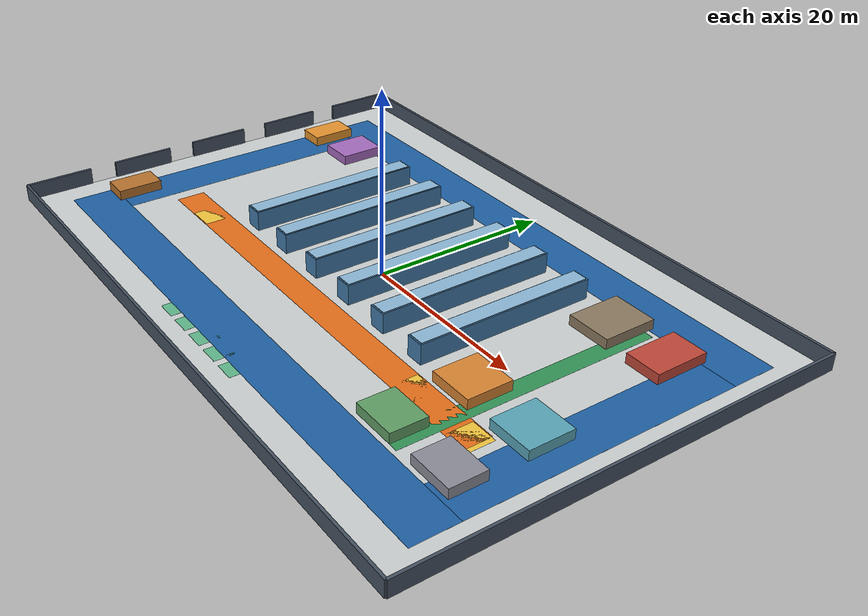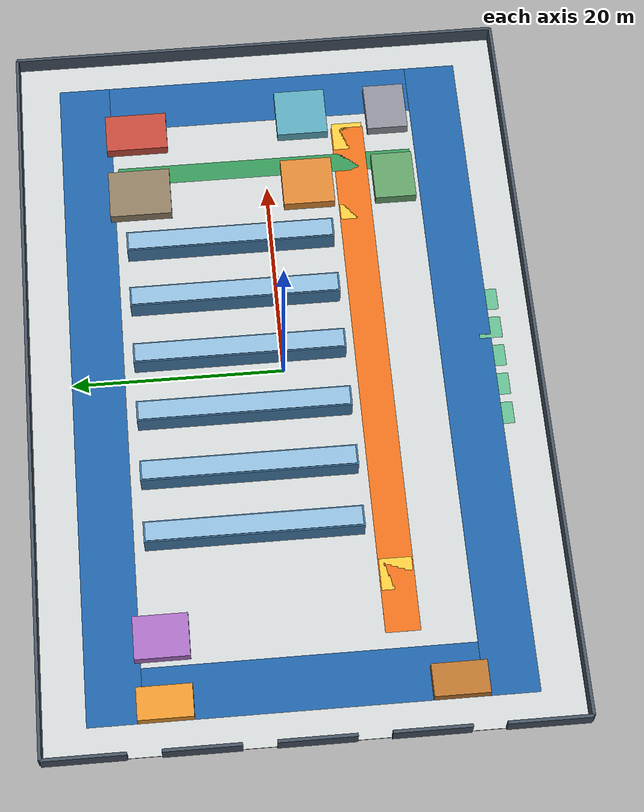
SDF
<?xml version='1.0' encoding='utf-8'?>
<sdf version="1.6">
  <world name="automotive_warehouse">
    <gravity>0 0 -9.8</gravity>
    <physics name="default_physics" type="ode">
      <max_step_size>0.001</max_step_size>
      <real_time_factor>1</real_time_factor>
      <real_time_update_rate>1000</real_time_update_rate>
    </physics>
    <plugin name="gazebo_ros_state" filename="libgazebo_ros_state.so">
      <ros>
        <namespace>/gazebo</namespace>
      </ros>
      <update_rate>30</update_rate>
    </plugin>
    <scene>
      <ambient>.72 .72 .72 1</ambient>
      <background>.88 .91 .94 1</background>
      <shadows>false</shadows>
    </scene>
    <light name="sun" type="directional">
      <pose>0 0 30 0 0 0</pose>
      <diffuse>.85 .85 .85 1</diffuse>
      <direction>-.3 .2 -1</direction>
      <cast_shadows>false</cast_shadows>
    </light>
    <model name="floor">
      <static>true</static>
      <pose>0 0 -0.1 0 0 0</pose>
      <link name="body">
        <collision name="collision">
          <pose>0 0 0.05 0 0 0</pose>
          <geometry>
            <box>
              <size>72 48 0.1</size>
            </box>
          </geometry>
        </collision>
        <visual name="visual">
          <pose>0 0 0.05 0 0 0</pose>
          <geometry>
            <box>
              <size>72 48 0.1</size>
            </box>
          </geometry>
          <material>
            <ambient>0.8 0.82 0.82 1</ambient>
            <diffuse>0.8 0.82 0.82 1</diffuse>
          </material>
          <cast_shadows>false</cast_shadows>
        </visual>
      </link>
    </model>
    <model name="wall_north">
      <static>true</static>
      <pose>0 24 0.0 0 0 0</pose>
      <link name="body">
        <collision name="collision">
          <pose>0 0 0.9 0 0 0</pose>
          <geometry>
            <box>
              <size>72 0.3 1.8</size>
            </box>
          </geometry>
        </collision>
        <visual name="visual">
          <pose>0 0 0.9 0 0 0</pose>
          <geometry>
            <box>
              <size>72 0.3 1.8</size>
            </box>
          </geometry>
          <material>
            <ambient>0.27 0.32 0.38 1</ambient>
            <diffuse>0.27 0.32 0.38 1</diffuse>
          </material>
          <cast_shadows>false</cast_shadows>
        </visual>
      </link>
    </model>
    <model name="wall_south">
      <static>true</static>
      <pose>0 -24 0.0 0 0 0</pose>
      <link name="body">
        <collision name="collision">
          <pose>0 0 0.9 0 0 0</pose>
          <geometry>
            <box>
              <size>72 0.3 1.8</size>
            </box>
          </geometry>
        </collision>
        <visual name="visual">
          <pose>0 0 0.9 0 0 0</pose>
          <geometry>
            <box>
              <size>72 0.3 1.8</size>
            </box>
          </geometry>
          <material>
            <ambient>0.27 0.32 0.38 1</ambient>
            <diffuse>0.27 0.32 0.38 1</diffuse>
          </material>
          <cast_shadows>false</cast_shadows>
        </visual>
      </link>
    </model>
    <model name="wall_east">
      <static>true</static>
      <pose>36 0 0.0 0 0 0</pose>
      <link name="body">
        <collision name="collision">
          <pose>0 0 0.9 0 0 0</pose>
          <geometry>
            <box>
              <size>0.3 48 1.8</size>
            </box>
          </geometry>
        </collision>
        <visual name="visual">
          <pose>0 0 0.9 0 0 0</pose>
          <geometry>
            <box>
              <size>0.3 48 1.8</size>
            </box>
          </geometry>
          <material>
            <ambient>0.27 0.32 0.38 1</ambient>
            <diffuse>0.27 0.32 0.38 1</diffuse>
          </material>
          <cast_shadows>false</cast_shadows>
        </visual>
      </link>
    </model>
    <model name="wall_west_0">
      <static>true</static>
      <pose>-36 20.25 0.0 0 0 0</pose>
      <link name="body">
        <collision name="collision">
          <pose>0 0 0.9 0 0 0</pose>
          <geometry>
            <box>
              <size>0.3 7.5 1.8</size>
            </box>
          </geometry>
        </collision>
        <visual name="visual">
          <pose>0 0 0.9 0 0 0</pose>
          <geometry>
            <box>
              <size>0.3 7.5 1.8</size>
            </box>
          </geometry>
          <material>
            <ambient>0.27 0.32 0.38 1</ambient>
            <diffuse>0.27 0.32 0.38 1</diffuse>
          </material>
          <cast_shadows>false</cast_shadows>
        </visual>
      </link>
    </model>
    <model name="wall_west_1">
      <static>true</static>
      <pose>-36 10.0 0.0 0 0 0</pose>
      <link name="body">
        <collision name="collision">
          <pose>0 0 0.9 0 0 0</pose>
          <geometry>
            <box>
              <size>0.3 7.0 1.8</size>
            </box>
          </geometry>
        </collision>
        <visual name="visual">
          <pose>0 0 0.9 0 0 0</pose>
          <geometry>
            <box>
              <size>0.3 7.0 1.8</size>
            </box>
          </geometry>
          <material>
            <ambient>0.27 0.32 0.38 1</ambient>
            <diffuse>0.27 0.32 0.38 1</diffuse>
          </material>
          <cast_shadows>false</cast_shadows>
        </visual>
      </link>
    </model>
    <model name="wall_west_2">
      <static>true</static>
      <pose>-36 0.0 0.0 0 0 0</pose>
      <link name="body">
        <collision name="collision">
          <pose>0 0 0.9 0 0 0</pose>
          <geometry>
            <box>
              <size>0.3 7.0 1.8</size>
            </box>
          </geometry>
        </collision>
        <visual name="visual">
          <pose>0 0 0.9 0 0 0</pose>
          <geometry>
            <box>
              <size>0.3 7.0 1.8</size>
            </box>
          </geometry>
          <material>
            <ambient>0.27 0.32 0.38 1</ambient>
            <diffuse>0.27 0.32 0.38 1</diffuse>
          </material>
          <cast_shadows>false</cast_shadows>
        </visual>
      </link>
    </model>
    <model name="wall_west_3">
      <static>true</static>
      <pose>-36 -10.0 0.0 0 0 0</pose>
      <link name="body">
        <collision name="collision">
          <pose>0 0 0.9 0 0 0</pose>
          <geometry>
            <box>
              <size>0.3 7.0 1.8</size>
            </box>
          </geometry>
        </collision>
        <visual name="visual">
          <pose>0 0 0.9 0 0 0</pose>
          <geometry>
            <box>
              <size>0.3 7.0 1.8</size>
            </box>
          </geometry>
          <material>
            <ambient>0.27 0.32 0.38 1</ambient>
            <diffuse>0.27 0.32 0.38 1</diffuse>
          </material>
          <cast_shadows>false</cast_shadows>
        </visual>
      </link>
    </model>
    <model name="wall_west_4">
      <static>true</static>
      <pose>-36 -20.25 0.0 0 0 0</pose>
      <link name="body">
        <collision name="collision">
          <pose>0 0 0.9 0 0 0</pose>
          <geometry>
            <box>
              <size>0.3 7.5 1.8</size>
            </box>
          </geometry>
        </collision>
        <visual name="visual">
          <pose>0 0 0.9 0 0 0</pose>
          <geometry>
            <box>
              <size>0.3 7.5 1.8</size>
            </box>
          </geometry>
          <material>
            <ambient>0.27 0.32 0.38 1</ambient>
            <diffuse>0.27 0.32 0.38 1</diffuse>
          </material>
          <cast_shadows>false</cast_shadows>
        </visual>
      </link>
    </model>
    <model name="heavy_lane_south">
      <static>true</static>
      <pose>0 -17.5 0.002 0 0 0</pose>
      <link name="body">
        <visual name="visual">
          <pose>0 0 0.002 0 0 0</pose>
          <geometry>
            <box>
              <size>66 5.0 0.004</size>
            </box>
          </geometry>
          <material>
            <ambient>0.12 0.38 0.64 1</ambient>
            <diffuse>0.12 0.38 0.64 1</diffuse>
          </material>
          <cast_shadows>false</cast_shadows>
        </visual>
      </link>
    </model>
    <model name="heavy_lane_north">
      <static>true</static>
      <pose>0 17.5 0.002 0 0 0</pose>
      <link name="body">
        <visual name="visual">
          <pose>0 0 0.002 0 0 0</pose>
          <geometry>
            <box>
              <size>66 5.0 0.004</size>
            </box>
          </geometry>
          <material>
            <ambient>0.12 0.38 0.64 1</ambient>
            <diffuse>0.12 0.38 0.64 1</diffuse>
          </material>
          <cast_shadows>false</cast_shadows>
        </visual>
      </link>
    </model>
    <model name="heavy_lane_west">
      <static>true</static>
      <pose>-30.5 0 0.002 0 0 0</pose>
      <link name="body">
        <visual name="visual">
          <pose>0 0 0.002 0 0 0</pose>
          <geometry>
            <box>
              <size>5.0 30 0.004</size>
            </box>
          </geometry>
          <material>
            <ambient>0.12 0.38 0.64 1</ambient>
            <diffuse>0.12 0.38 0.64 1</diffuse>
          </material>
          <cast_shadows>false</cast_shadows>
        </visual>
      </link>
    </model>
    <model name="heavy_lane_east">
      <static>true</static>
      <pose>30.5 0 0.002 0 0 0</pose>
      <link name="body">
        <visual name="visual">
          <pose>0 0 0.002 0 0 0</pose>
          <geometry>
            <box>
              <size>5.0 30 0.004</size>
            </box>
          </geometry>
          <material>
            <ambient>0.12 0.38 0.64 1</ambient>
            <diffuse>0.12 0.38 0.64 1</diffuse>
          </material>
          <cast_shadows>false</cast_shadows>
        </visual>
      </link>
    </model>
    <model name="light_lane_middle">
      <static>true</static>
      <pose>0 -8.5 0.002 0 0 0</pose>
      <link name="body">
        <visual name="visual">
          <pose>0 0 0.002 0 0 0</pose>
          <geometry>
            <box>
              <size>53 3.2 0.004</size>
            </box>
          </geometry>
          <material>
            <ambient>0.9 0.43 0.1 1</ambient>
            <diffuse>0.9 0.43 0.1 1</diffuse>
          </material>
          <cast_shadows>false</cast_shadows>
        </visual>
      </link>
    </model>
    <model name="pedestrian_lane">
      <static>true</static>
      <pose>22.5 0 0.002 0 0 0</pose>
      <link name="body">
        <visual name="visual">
          <pose>0 0 0.002 0 0 0</pose>
          <geometry>
            <box>
              <size>2.0 29 0.004</size>
            </box>
          </geometry>
          <material>
            <ambient>0.2 0.58 0.34 1</ambient>
            <diffuse>0.2 0.58 0.34 1</diffuse>
          </material>
          <cast_shadows>false</cast_shadows>
        </visual>
      </link>
    </model>
    <model name="pallet_rack_1">
      <static>true</static>
      <pose>-16 4.0 0.0 0 0 0</pose>
      <link name="body">
        <collision name="collision">
          <pose>0 0 1.1 0 0 0</pose>
          <geometry>
            <box>
              <size>2.0 20.0 2.2</size>
            </box>
          </geometry>
        </collision>
        <visual name="visual">
          <pose>0 0 1.1 0 0 0</pose>
          <geometry>
            <box>
              <size>2.0 20.0 2.2</size>
            </box>
          </geometry>
          <material>
            <ambient>0.26 0.48 0.66 1</ambient>
            <diffuse>0.26 0.48 0.66 1</diffuse>
          </material>
          <cast_shadows>false</cast_shadows>
        </visual>
      </link>
    </model>
    <model name="rack_cap_1">
      <static>true</static>
      <pose>-16 4.0 2.2 0 0 0</pose>
      <link name="body">
        <visual name="visual">
          <pose>0 0 0.04 0 0 0</pose>
          <geometry>
            <box>
              <size>1.75 19.7 0.08</size>
            </box>
          </geometry>
          <material>
            <ambient>0.55 0.72 0.84 1</ambient>
            <diffuse>0.55 0.72 0.84 1</diffuse>
          </material>
          <cast_shadows>false</cast_shadows>
        </visual>
      </link>
    </model>
    <model name="pallet_rack_2">
      <static>true</static>
      <pose>-10 4.0 0.0 0 0 0</pose>
      <link name="body">
        <collision name="collision">
          <pose>0 0 1.1 0 0 0</pose>
          <geometry>
            <box>
              <size>2.0 20.0 2.2</size>
            </box>
          </geometry>
        </collision>
        <visual name="visual">
          <pose>0 0 1.1 0 0 0</pose>
          <geometry>
            <box>
              <size>2.0 20.0 2.2</size>
            </box>
          </geometry>
          <material>
            <ambient>0.26 0.48 0.66 1</ambient>
            <diffuse>0.26 0.48 0.66 1</diffuse>
          </material>
          <cast_shadows>false</cast_shadows>
        </visual>
      </link>
    </model>
    <model name="rack_cap_2">
      <static>true</static>
      <pose>-10 4.0 2.2 0 0 0</pose>
      <link name="body">
        <visual name="visual">
          <pose>0 0 0.04 0 0 0</pose>
          <geometry>
            <box>
              <size>1.75 19.7 0.08</size>
            </box>
          </geometry>
          <material>
            <ambient>0.55 0.72 0.84 1</ambient>
            <diffuse>0.55 0.72 0.84 1</diffuse>
          </material>
          <cast_shadows>false</cast_shadows>
        </visual>
      </link>
    </model>
    <model name="pallet_rack_3">
      <static>true</static>
      <pose>-4 4.0 0.0 0 0 0</pose>
      <link name="body">
        <collision name="collision">
          <pose>0 0 1.1 0 0 0</pose>
          <geometry>
            <box>
              <size>2.0 20.0 2.2</size>
            </box>
          </geometry>
        </collision>
        <visual name="visual">
          <pose>0 0 1.1 0 0 0</pose>
          <geometry>
            <box>
              <size>2.0 20.0 2.2</size>
            </box>
          </geometry>
          <material>
            <ambient>0.26 0.48 0.66 1</ambient>
            <diffuse>0.26 0.48 0.66 1</diffuse>
          </material>
          <cast_shadows>false</cast_shadows>
        </visual>
      </link>
    </model>
    <model name="rack_cap_3">
      <static>true</static>
      <pose>-4 4.0 2.2 0 0 0</pose>
      <link name="body">
        <visual name="visual">
          <pose>0 0 0.04 0 0 0</pose>
          <geometry>
            <box>
              <size>1.75 19.7 0.08</size>
            </box>
          </geometry>
          <material>
            <ambient>0.55 0.72 0.84 1</ambient>
            <diffuse>0.55 0.72 0.84 1</diffuse>
          </material>
          <cast_shadows>false</cast_shadows>
        </visual>
      </link>
    </model>
    <model name="pallet_rack_4">
      <static>true</static>
      <pose>2 4.0 0.0 0 0 0</pose>
      <link name="body">
        <collision name="collision">
          <pose>0 0 1.1 0 0 0</pose>
          <geometry>
            <box>
              <size>2.0 20.0 2.2</size>
            </box>
          </geometry>
        </collision>
        <visual name="visual">
          <pose>0 0 1.1 0 0 0</pose>
          <geometry>
            <box>
              <size>2.0 20.0 2.2</size>
            </box>
          </geometry>
          <material>
            <ambient>0.26 0.48 0.66 1</ambient>
            <diffuse>0.26 0.48 0.66 1</diffuse>
          </material>
          <cast_shadows>false</cast_shadows>
        </visual>
      </link>
    </model>
    <model name="rack_cap_4">
      <static>true</static>
      <pose>2 4.0 2.2 0 0 0</pose>
      <link name="body">
        <visual name="visual">
          <pose>0 0 0.04 0 0 0</pose>
          <geometry>
            <box>
              <size>1.75 19.7 0.08</size>
            </box>
          </geometry>
          <material>
            <ambient>0.55 0.72 0.84 1</ambient>
            <diffuse>0.55 0.72 0.84 1</diffuse>
          </material>
          <cast_shadows>false</cast_shadows>
        </visual>
      </link>
    </model>
    <model name="pallet_rack_5">
      <static>true</static>
      <pose>8 4.0 0.0 0 0 0</pose>
      <link name="body">
        <collision name="collision">
          <pose>0 0 1.1 0 0 0</pose>
          <geometry>
            <box>
              <size>2.0 20.0 2.2</size>
            </box>
          </geometry>
        </collision>
        <visual name="visual">
          <pose>0 0 1.1 0 0 0</pose>
          <geometry>
            <box>
              <size>2.0 20.0 2.2</size>
            </box>
          </geometry>
          <material>
            <ambient>0.26 0.48 0.66 1</ambient>
            <diffuse>0.26 0.48 0.66 1</diffuse>
          </material>
          <cast_shadows>false</cast_shadows>
        </visual>
      </link>
    </model>
    <model name="rack_cap_5">
      <static>true</static>
      <pose>8 4.0 2.2 0 0 0</pose>
      <link name="body">
        <visual name="visual">
          <pose>0 0 0.04 0 0 0</pose>
          <geometry>
            <box>
              <size>1.75 19.7 0.08</size>
            </box>
          </geometry>
          <material>
            <ambient>0.55 0.72 0.84 1</ambient>
            <diffuse>0.55 0.72 0.84 1</diffuse>
          </material>
          <cast_shadows>false</cast_shadows>
        </visual>
      </link>
    </model>
    <model name="pallet_rack_6">
      <static>true</static>
      <pose>14 4.0 0.0 0 0 0</pose>
      <link name="body">
        <collision name="collision">
          <pose>0 0 1.1 0 0 0</pose>
          <geometry>
            <box>
              <size>2.0 20.0 2.2</size>
            </box>
          </geometry>
        </collision>
        <visual name="visual">
          <pose>0 0 1.1 0 0 0</pose>
          <geometry>
            <box>
              <size>2.0 20.0 2.2</size>
            </box>
          </geometry>
          <material>
            <ambient>0.26 0.48 0.66 1</ambient>
            <diffuse>0.26 0.48 0.66 1</diffuse>
          </material>
          <cast_shadows>false</cast_shadows>
        </visual>
      </link>
    </model>
    <model name="rack_cap_6">
      <static>true</static>
      <pose>14 4.0 2.2 0 0 0</pose>
      <link name="body">
        <visual name="visual">
          <pose>0 0 0.04 0 0 0</pose>
          <geometry>
            <box>
              <size>1.75 19.7 0.08</size>
            </box>
          </geometry>
          <material>
            <ambient>0.55 0.72 0.84 1</ambient>
            <diffuse>0.55 0.72 0.84 1</diffuse>
          </material>
          <cast_shadows>false</cast_shadows>
        </visual>
      </link>
    </model>
    <model name="receiving_in">
      <static>true</static>
      <pose>-31.5 13.0 0.0 0 0 0</pose>
      <link name="body">
        <collision name="collision">
          <pose>0 0 0.55 0 0 0</pose>
          <geometry>
            <box>
              <size>3.0 5.0 1.1</size>
            </box>
          </geometry>
        </collision>
        <visual name="visual">
          <pose>0 0 0.55 0 0 0</pose>
          <geometry>
            <box>
              <size>3.0 5.0 1.1</size>
            </box>
          </geometry>
          <material>
            <ambient>0.9 0.58 0.18 1</ambient>
            <diffuse>0.9 0.58 0.18 1</diffuse>
          </material>
          <cast_shadows>false</cast_shadows>
        </visual>
      </link>
    </model>
    <model name="quality_control">
      <static>true</static>
      <pose>-25.5 13.0 0.0 0 0 0</pose>
      <link name="body">
        <collision name="collision">
          <pose>0 0 0.55 0 0 0</pose>
          <geometry>
            <box>
              <size>4.0 5.0 1.1</size>
            </box>
          </geometry>
        </collision>
        <visual name="visual">
          <pose>0 0 0.55 0 0 0</pose>
          <geometry>
            <box>
              <size>4.0 5.0 1.1</size>
            </box>
          </geometry>
          <material>
            <ambient>0.65 0.42 0.75 1</ambient>
            <diffuse>0.65 0.42 0.75 1</diffuse>
          </material>
          <cast_shadows>false</cast_shadows>
        </visual>
      </link>
    </model>
    <model name="oversize_storage">
      <static>true</static>
      <pose>20.0 12.5 0.0 0 0 0</pose>
      <link name="body">
        <collision name="collision">
          <pose>0 0 0.55 0 0 0</pose>
          <geometry>
            <box>
              <size>5.0 6.0 1.1</size>
            </box>
          </geometry>
        </collision>
        <visual name="visual">
          <pose>0 0 0.55 0 0 0</pose>
          <geometry>
            <box>
              <size>5.0 6.0 1.1</size>
            </box>
          </geometry>
          <material>
            <ambient>0.55 0.48 0.38 1</ambient>
            <diffuse>0.55 0.48 0.38 1</diffuse>
          </material>
          <cast_shadows>false</cast_shadows>
        </visual>
      </link>
    </model>
    <model name="hazmat_cell">
      <static>true</static>
      <pose>27.0 12.5 0.0 0 0 0</pose>
      <link name="body">
        <collision name="collision">
          <pose>0 0 0.55 0 0 0</pose>
          <geometry>
            <box>
              <size>4.0 6.0 1.1</size>
            </box>
          </geometry>
        </collision>
        <visual name="visual">
          <pose>0 0 0.55 0 0 0</pose>
          <geometry>
            <box>
              <size>4.0 6.0 1.1</size>
            </box>
          </geometry>
          <material>
            <ambient>0.75 0.28 0.22 1</ambient>
            <diffuse>0.75 0.28 0.22 1</diffuse>
          </material>
          <cast_shadows>false</cast_shadows>
        </visual>
      </link>
    </model>
    <model name="kitting_station">
      <static>true</static>
      <pose>20.0 -4.0 0.0 0 0 0</pose>
      <link name="body">
        <collision name="collision">
          <pose>0 0 0.55 0 0 0</pose>
          <geometry>
            <box>
              <size>5.0 5.0 1.1</size>
            </box>
          </geometry>
        </collision>
        <visual name="visual">
          <pose>0 0 0.55 0 0 0</pose>
          <geometry>
            <box>
              <size>5.0 5.0 1.1</size>
            </box>
          </geometry>
          <material>
            <ambient>0.85 0.52 0.2 1</ambient>
            <diffuse>0.85 0.52 0.2 1</diffuse>
          </material>
          <cast_shadows>false</cast_shadows>
        </visual>
      </link>
    </model>
    <model name="line_buffer">
      <static>true</static>
      <pose>28.0 -4.0 0.0 0 0 0</pose>
      <link name="body">
        <collision name="collision">
          <pose>0 0 0.55 0 0 0</pose>
          <geometry>
            <box>
              <size>5.0 5.0 1.1</size>
            </box>
          </geometry>
        </collision>
        <visual name="visual">
          <pose>0 0 0.55 0 0 0</pose>
          <geometry>
            <box>
              <size>5.0 5.0 1.1</size>
            </box>
          </geometry>
          <material>
            <ambient>0.35 0.65 0.72 1</ambient>
            <diffuse>0.35 0.65 0.72 1</diffuse>
          </material>
          <cast_shadows>false</cast_shadows>
        </visual>
      </link>
    </model>
    <model name="amr_service">
      <static>true</static>
      <pose>20.0 -12.5 0.0 0 0 0</pose>
      <link name="body">
        <collision name="collision">
          <pose>0 0 0.55 0 0 0</pose>
          <geometry>
            <box>
              <size>5.0 4.0 1.1</size>
            </box>
          </geometry>
        </collision>
        <visual name="visual">
          <pose>0 0 0.55 0 0 0</pose>
          <geometry>
            <box>
              <size>5.0 4.0 1.1</size>
            </box>
          </geometry>
          <material>
            <ambient>0.38 0.62 0.4 1</ambient>
            <diffuse>0.38 0.62 0.4 1</diffuse>
          </material>
          <cast_shadows>false</cast_shadows>
        </visual>
      </link>
    </model>
    <model name="empty_container">
      <static>true</static>
      <pose>28.0 -12.5 0.0 0 0 0</pose>
      <link name="body">
        <collision name="collision">
          <pose>0 0 0.55 0 0 0</pose>
          <geometry>
            <box>
              <size>5.0 4.0 1.1</size>
            </box>
          </geometry>
        </collision>
        <visual name="visual">
          <pose>0 0 0.55 0 0 0</pose>
          <geometry>
            <box>
              <size>5.0 4.0 1.1</size>
            </box>
          </geometry>
          <material>
            <ambient>0.55 0.55 0.6 1</ambient>
            <diffuse>0.55 0.55 0.6 1</diffuse>
          </material>
          <cast_shadows>false</cast_shadows>
        </visual>
      </link>
    </model>
    <model name="shipping_out">
      <static>true</static>
      <pose>-31.5 -13.0 0.0 0 0 0</pose>
      <link name="body">
        <collision name="collision">
          <pose>0 0 0.55 0 0 0</pose>
          <geometry>
            <box>
              <size>3.0 5.0 1.1</size>
            </box>
          </geometry>
        </collision>
        <visual name="visual">
          <pose>0 0 0.55 0 0 0</pose>
          <geometry>
            <box>
              <size>3.0 5.0 1.1</size>
            </box>
          </geometry>
          <material>
            <ambient>0.72 0.45 0.18 1</ambient>
            <diffuse>0.72 0.45 0.18 1</diffuse>
          </material>
          <cast_shadows>false</cast_shadows>
        </visual>
      </link>
    </model>
    <model name="handoff_p01">
      <static>true</static>
      <pose>-21 -8.5 0.002 0 0 0</pose>
      <link name="body">
        <visual name="visual">
          <pose>0 0 0.002 0 0 0</pose>
          <geometry>
            <box>
              <size>3 3 0.004</size>
            </box>
          </geometry>
          <material>
            <ambient>0.95 0.78 0.24 1</ambient>
            <diffuse>0.95 0.78 0.24 1</diffuse>
          </material>
          <cast_shadows>false</cast_shadows>
        </visual>
      </link>
    </model>
    <model name="handoff_b01">
      <static>true</static>
      <pose>17.5 -8.5 0.002 0 0 0</pose>
      <link name="body">
        <visual name="visual">
          <pose>0 0 0.002 0 0 0</pose>
          <geometry>
            <box>
              <size>3 3 0.004</size>
            </box>
          </geometry>
          <material>
            <ambient>0.95 0.78 0.24 1</ambient>
            <diffuse>0.95 0.78 0.24 1</diffuse>
          </material>
          <cast_shadows>false</cast_shadows>
        </visual>
      </link>
    </model>
    <model name="handoff_k01">
      <static>true</static>
      <pose>25.5 -8.5 0.002 0 0 0</pose>
      <link name="body">
        <visual name="visual">
          <pose>0 0 0.002 0 0 0</pose>
          <geometry>
            <box>
              <size>3 3 0.004</size>
            </box>
          </geometry>
          <material>
            <ambient>0.95 0.78 0.24 1</ambient>
            <diffuse>0.95 0.78 0.24 1</diffuse>
          </material>
          <cast_shadows>false</cast_shadows>
        </visual>
      </link>
    </model>
    <model name="parking_1">
      <static>true</static>
      <pose>-6 -20.0 0.002 0 0 0</pose>
      <link name="body">
        <visual name="visual">
          <pose>0 0 0.002 0 0 0</pose>
          <geometry>
            <box>
              <size>2.2 2.2 0.004</size>
            </box>
          </geometry>
          <material>
            <ambient>0.38 0.72 0.55 1</ambient>
            <diffuse>0.38 0.72 0.55 1</diffuse>
          </material>
          <cast_shadows>false</cast_shadows>
        </visual>
      </link>
    </model>
    <model name="parking_2">
      <static>true</static>
      <pose>-3 -20.0 0.002 0 0 0</pose>
      <link name="body">
        <visual name="visual">
          <pose>0 0 0.002 0 0 0</pose>
          <geometry>
            <box>
              <size>2.2 2.2 0.004</size>
            </box>
          </geometry>
          <material>
            <ambient>0.38 0.72 0.55 1</ambient>
            <diffuse>0.38 0.72 0.55 1</diffuse>
          </material>
          <cast_shadows>false</cast_shadows>
        </visual>
      </link>
    </model>
    <model name="parking_3">
      <static>true</static>
      <pose>0 -20.0 0.002 0 0 0</pose>
      <link name="body">
        <visual name="visual">
          <pose>0 0 0.002 0 0 0</pose>
          <geometry>
            <box>
              <size>2.2 2.2 0.004</size>
            </box>
          </geometry>
          <material>
            <ambient>0.38 0.72 0.55 1</ambient>
            <diffuse>0.38 0.72 0.55 1</diffuse>
          </material>
          <cast_shadows>false</cast_shadows>
        </visual>
      </link>
    </model>
    <model name="parking_4">
      <static>true</static>
      <pose>3 -20.0 0.002 0 0 0</pose>
      <link name="body">
        <visual name="visual">
          <pose>0 0 0.002 0 0 0</pose>
          <geometry>
            <box>
              <size>2.2 2.2 0.004</size>
            </box>
          </geometry>
          <material>
            <ambient>0.38 0.72 0.55 1</ambient>
            <diffuse>0.38 0.72 0.55 1</diffuse>
          </material>
          <cast_shadows>false</cast_shadows>
        </visual>
      </link>
    </model>
    <model name="parking_5">
      <static>true</static>
      <pose>6 -20.0 0.002 0 0 0</pose>
      <link name="body">
        <visual name="visual">
          <pose>0 0 0.002 0 0 0</pose>
          <geometry>
            <box>
              <size>2.2 2.2 0.004</size>
            </box>
          </geometry>
          <material>
            <ambient>0.38 0.72 0.55 1</ambient>
            <diffuse>0.38 0.72 0.55 1</diffuse>
          </material>
          <cast_shadows>false</cast_shadows>
        </visual>
      </link>
    </model>
  </world>
</sdf>
